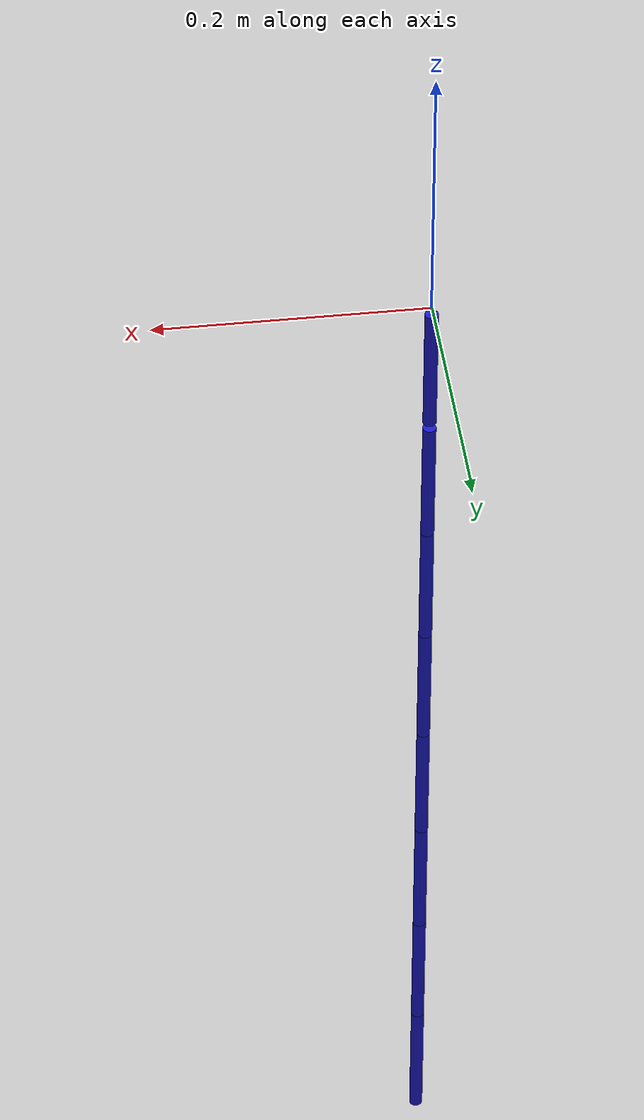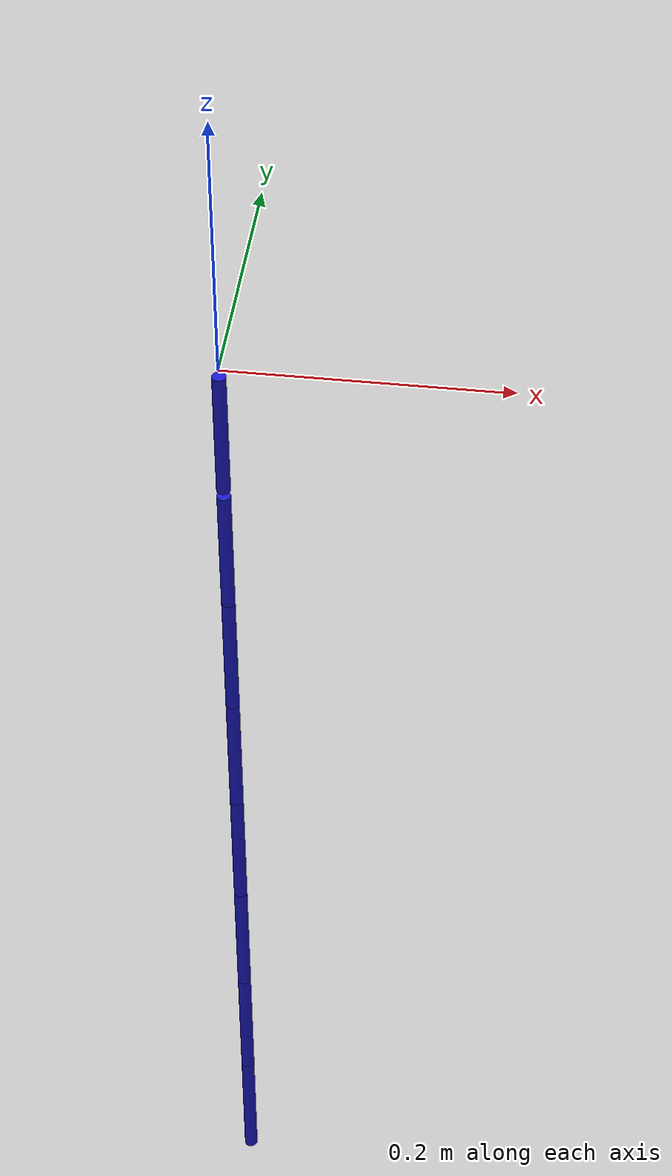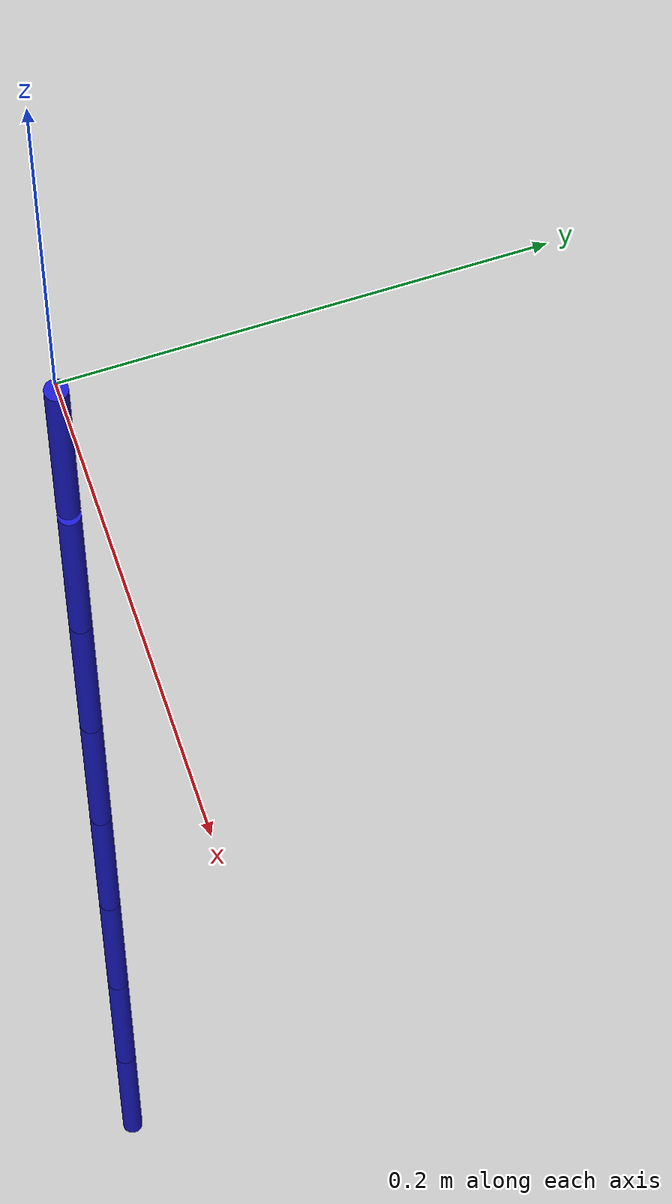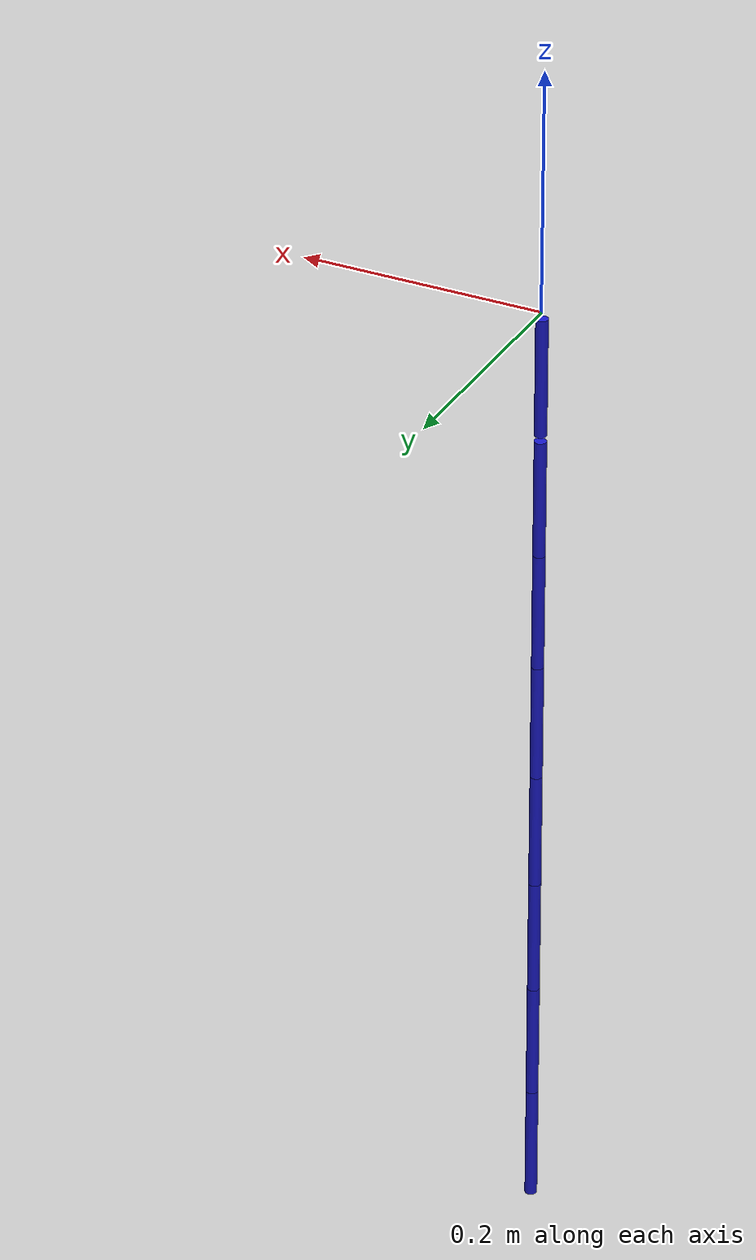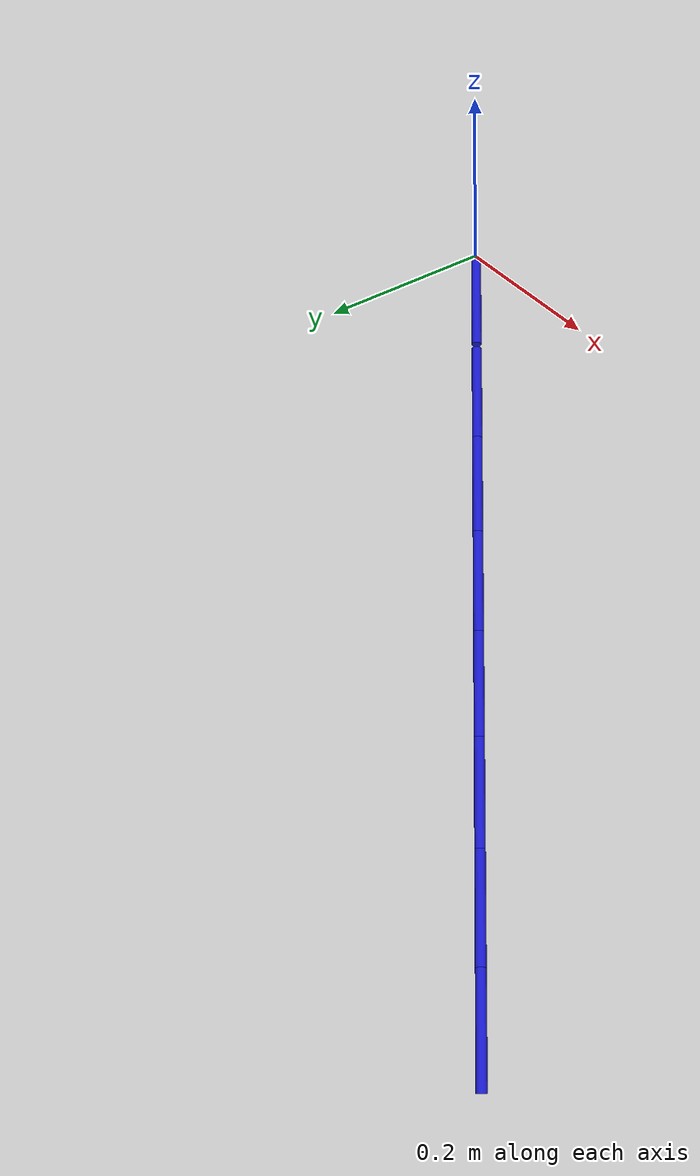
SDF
<?xml version="1.0"?>
<sdf version="1.6">
  <model name="cable">
    <link name="base_link">
      <inertial>
        <pose>0 0 0 0 0 0</pose>
        <mass>0.00001</mass>
        <inertia>
          <ixx>0.0000016833</ixx>
          <ixy>0</ixy>
          <ixz>0</ixz>
          <iyy>0.0000016833</iyy>
          <iyz>0</iyz>
          <izz>0.00000005</izz>
        </inertia>
      </inertial>
      <visual name="base_visual">
        <pose>0 0 -0.055 0 0 0</pose>
        <geometry>
          <cylinder>
            <radius>0.005</radius>
            <length>0.1</length>
          </cylinder>
        </geometry>
        <material>
          <ambient>0.1 0.1 0.8 1</ambient>
          <diffuse>0.1 0.1 0.8 1</diffuse>
          <specular>0.1 0.1 0.1 1</specular>
        </material>
      </visual>
    </link>

    <link name="link1">
    <inertial>
        <pose>0 0 0 0 0 0</pose>
        <mass>0.00001</mass>
        <inertia>
          <ixx>0.0000016833</ixx>
          <ixy>0</ixy>
          <ixz>0</ixz>
          <iyy>0.0000016833</iyy>
          <iyz>0</iyz>
          <izz>0.00000005</izz>
        </inertia>
    </inertial>
      <pose>0 0 -0.105 0 0 0</pose>
      <visual name="visual1">
        <pose>0 0 -0.055 0 0 0</pose>
        <geometry>
          <cylinder>
            <radius>0.005</radius>
            <length>0.1</length>
          </cylinder>
        </geometry>
        <material>
          <ambient>0.1 0.1 0.8 1</ambient>
          <diffuse>0.1 0.1 0.8 1</diffuse>
          <specular>0.1 0.1 0.1 1</specular>
        </material>
      </visual>
    </link>

    <link name="link2">
    <inertial>
        <pose>0 0 0 0 0 0</pose>
        <mass>0.00001</mass>
        <inertia>
          <ixx>0.0000016833</ixx>
          <ixy>0</ixy>
          <ixz>0</ixz>
          <iyy>0.0000016833</iyy>
          <iyz>0</iyz>
          <izz>0.00000005</izz>
        </inertia>
    </inertial>
      <pose>0 0 -0.205 0 0 0</pose>
      <visual name="visual2">
      <pose>0 0 -0.055 0 0 0</pose>
        <geometry>
          <cylinder>
            <radius>0.005</radius>
            <length>0.1</length>
          </cylinder>
        </geometry>
        <material>
          <ambient>0.1 0.1 0.8 1</ambient>
          <diffuse>0.1 0.1 0.8 1</diffuse>
          <specular>0.1 0.1 0.1 1</specular>
        </material>
      </visual>
    </link>

    <link name="link3">
    <inertial>
        <pose>0 0 0 0 0 0</pose>
        <mass>0.00001</mass>
        <inertia>
          <ixx>0.0000016833</ixx>
          <ixy>0</ixy>
          <ixz>0</ixz>
          <iyy>0.0000016833</iyy>
          <iyz>0</iyz>
          <izz>0.00000005</izz>
        </inertia>
    </inertial>
      <pose>0 0 -0.305 0 0 0</pose>
      <visual name="visual3">
      <pose>0 0 -0.055 0 0 0</pose>
        <geometry>
          <cylinder>
            <radius>0.005</radius>
            <length>0.1</length>
          </cylinder>
        </geometry>
        <material>
          <ambient>0.1 0.1 0.8 1</ambient>
          <diffuse>0.1 0.1 0.8 1</diffuse>
          <specular>0.1 0.1 0.1 1</specular>
        </material>
      </visual>
    </link>

    <link name="link4">
    <inertial>
        <pose>0 0 0 0 0 0</pose>
        <mass>0.00001</mass>
        <inertia>
          <ixx>0.0000016833</ixx>
          <ixy>0</ixy>
          <ixz>0</ixz>
          <iyy>0.0000016833</iyy>
          <iyz>0</iyz>
          <izz>0.00000005</izz>
        </inertia>
    </inertial>
      <pose>0 0 -0.405 0 0 0</pose>
      <visual name="visual4">
      <pose>0 0 -0.055 0 0 0</pose>
        <geometry>
          <cylinder>
            <radius>0.005</radius>
            <length>0.1</length>
          </cylinder>
        </geometry>
        <material>
          <ambient>0.1 0.1 0.8 1</ambient>
          <diffuse>0.1 0.1 0.8 1</diffuse>
          <specular>0.1 0.1 0.1 1</specular>
        </material>
      </visual>
    </link>

    <link name="link5">
    <inertial>
        <pose>0 0 0 0 0 0</pose>
        <mass>0.00001</mass>
        <inertia>
          <ixx>0.0000016833</ixx>
          <ixy>0</ixy>
          <ixz>0</ixz>
          <iyy>0.0000016833</iyy>
          <iyz>0</iyz>
          <izz>0.00000005</izz>
        </inertia>
    </inertial>
      <pose>0 0 -0.505 0 0 0</pose>
      <visual name="visual5">
      <pose>0 0 -0.055 0 0 0</pose>
        <geometry>
          <cylinder>
            <radius>0.005</radius>
            <length>0.1</length>
          </cylinder>
        </geometry>
        <material>
          <ambient>0.1 0.1 0.8 1</ambient>
          <diffuse>0.1 0.1 0.8 1</diffuse>
          <specular>0.1 0.1 0.1 1</specular>
        </material>
      </visual>
    </link>

    <link name="link6">
    <inertial>
        <pose>0 0 0 0 0 0</pose>
        <mass>0.00001</mass>
        <inertia>
          <ixx>0.0000016833</ixx>
          <ixy>0</ixy>
          <ixz>0</ixz>
          <iyy>0.0000016833</iyy>
          <iyz>0</iyz>
          <izz>0.00000005</izz>
        </inertia>
    </inertial>
      <pose>0 0 -0.605 0 0 0</pose>
      <visual name="visual6">
      <pose>0 0 -0.055 0 0 0</pose>
        <geometry>
          <cylinder>
            <radius>0.005</radius>
            <length>0.1</length>
          </cylinder>
        </geometry>
        <material>
          <ambient>0.1 0.1 0.8 1</ambient>
          <diffuse>0.1 0.1 0.8 1</diffuse>
          <specular>0.1 0.1 0.1 1</specular>
        </material>
      </visual>
    </link>

    <link name="link7">
    <inertial>
        <pose>0 0 0 0 0 0</pose>
        <mass>0.00001</mass>
        <inertia>
          <ixx>0.0000016833</ixx>
          <ixy>0</ixy>
          <ixz>0</ixz>
          <iyy>0.0000016833</iyy>
          <iyz>0</iyz>
          <izz>0.00000005</izz>
        </inertia>
    </inertial>
      <pose>0 0 -0.705 0 0 0</pose>
      <visual name="visual7">
      <pose>0 0 -0.055 0 0 0</pose>
        <geometry>
          <cylinder>
            <radius>0.005</radius>
            <length>0.1</length>
          </cylinder>
        </geometry>
        <material>
          <ambient>0.1 0.1 0.8 1</ambient>
          <diffuse>0.1 0.1 0.8 1</diffuse>
          <specular>0.1 0.1 0.1 1</specular>
        </material>
      </visual>
    </link>

    <joint name='joint0' type='revolute'>
        <child>link1</child>
      <parent>base_link</parent>
      <axis>
        <xyz>0 1 0</xyz>
        <limit>
          <lower>-3.14/3</lower>
          <upper>3.14/3</upper>
        </limit>
        <dynamics>
          <damping>0.4</damping>
        </dynamics>
      </axis>
      <physics>
        <ode>
          <implicit_spring_damper>1</implicit_spring_damper>
        </ode>
      </physics>
    </joint>

    <joint name='joint1' type='revolute'>
        <child>link2</child>
      <parent>link1</parent>
      <axis>
        <xyz>1 0 0</xyz>
        <limit>
          <lower>-3.14/3</lower>
          <upper>3.14/3</upper>
        </limit>
        <dynamics>
          <damping>0.4</damping>
        </dynamics>
      </axis>
      <physics>
        <ode>
          <implicit_spring_damper>1</implicit_spring_damper>
        </ode>
      </physics>
    </joint>

    <joint name='joint2' type='revolute'>
        <child>link3</child>
      <parent>link2</parent>
      <axis>
        <xyz>0 1 0</xyz>
        <limit>
          <lower>-3.14/3</lower>
          <upper>3.14/3</upper>
        </limit>
        <dynamics>
          <damping>0.4</damping>
        </dynamics>
      </axis>
      <physics>
        <ode>
          <implicit_spring_damper>1</implicit_spring_damper>
        </ode>
      </physics>
    </joint>

    <joint name='joint3' type='revolute'>
      <child>link4</child>
      <parent>link3</parent>
      <axis>
        <xyz>1 0 0</xyz>
        <limit>
          <lower>-3.14/3</lower>
          <upper>3.14/3</upper>
        </limit>
        <dynamics>
          <damping>0.4</damping>
        </dynamics>
      </axis>
      <physics>
        <ode>
          <implicit_spring_damper>1</implicit_spring_damper>
        </ode>
      </physics>
    </joint>

    <joint name='joint4' type='revolute'>
      <child>link5</child>
      <parent>link4</parent>
      <axis>
        <xyz>0 1 0</xyz>
        <limit>
          <lower>-3.14/3</lower>
          <upper>3.14/3</upper>
        </limit>
        <dynamics>
          <damping>0.4</damping>
        </dynamics>
      </axis>
      <physics>
        <ode>
          <implicit_spring_damper>1</implicit_spring_damper>
        </ode>
      </physics>
    </joint>

    <joint name='joint5' type='revolute'>
      <child>link6</child>
      <parent>link5</parent>
      <axis>
        <xyz>1 0 0</xyz>
        <limit>
          <lower>-3.14/3</lower>
          <upper>3.14/3</upper>
        </limit>
        <dynamics>
          <damping>0.4</damping>
        </dynamics>
      </axis>
      <physics>
        <ode>
          <implicit_spring_damper>1</implicit_spring_damper>
        </ode>
      </physics>
    </joint>

    <joint name='joint6' type='revolute'>
      <child>link7</child>
      <parent>link6</parent>
      <axis>
        <xyz>0 1 0</xyz>
        <limit>
          <lower>-3.14/3</lower>
          <upper>3.14/3</upper>
        </limit>
        <dynamics>
          <damping>0.4</damping>
        </dynamics>
      </axis>
      <physics>
        <ode>
          <implicit_spring_damper>1</implicit_spring_damper>
        </ode>
      </physics>
    </joint>

  </model>
</sdf>
